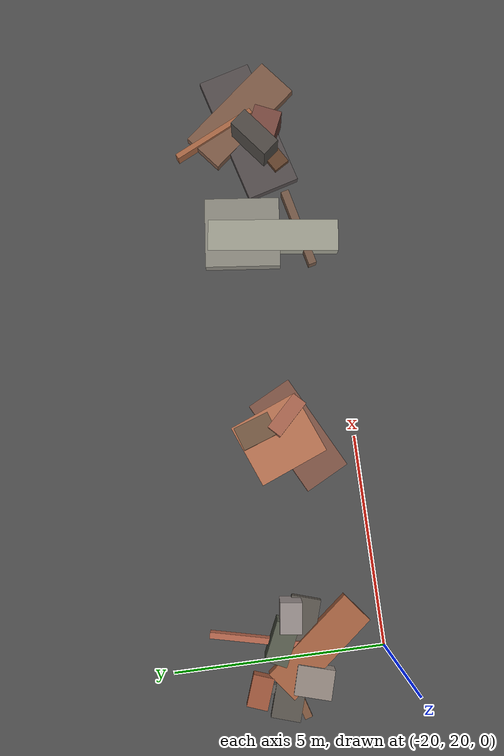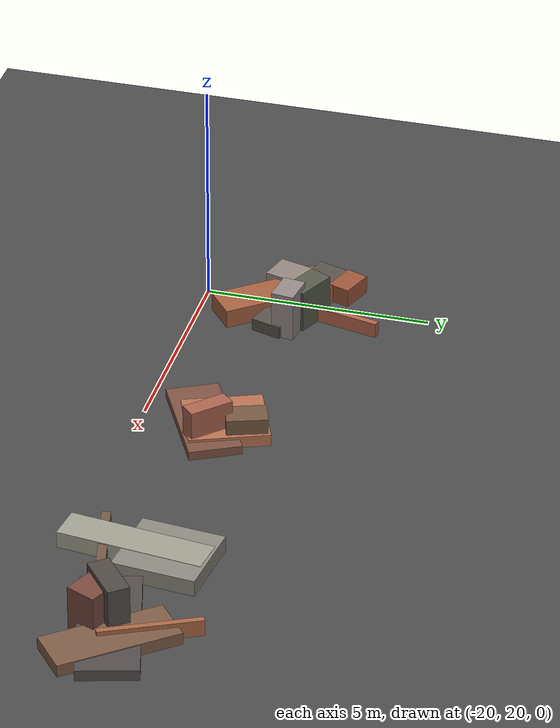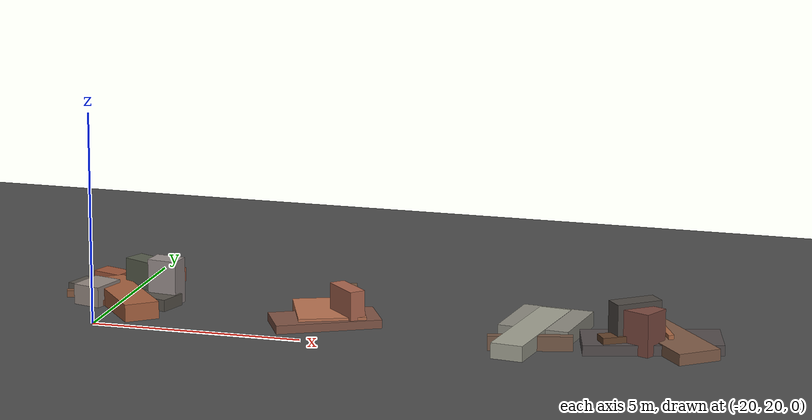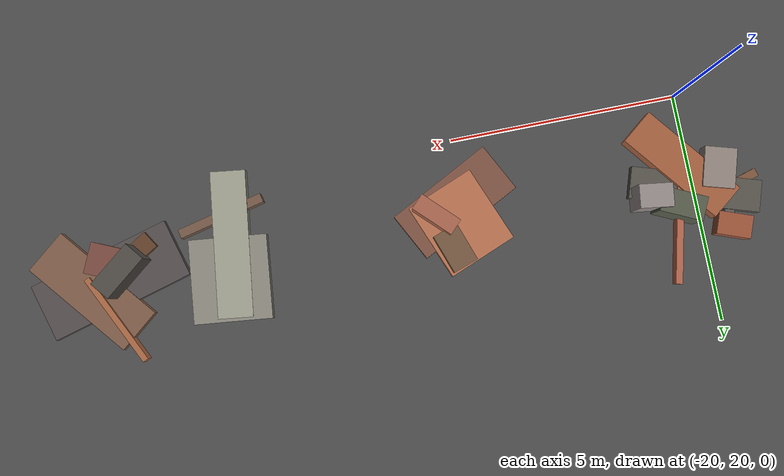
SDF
<sdf version="1.6">
 <world name="navitas_arena">
  <model name="ground_plane">
   <static>true</static>
   <link name="link">
    <collision name="collision">
     <geometry><plane><normal>0 0 1</normal><size>400 400</size></plane></geometry>
     <surface><friction><ode><mu>0.800</mu><mu2>0.800</mu2></ode></friction></surface>
    </collision>
    <visual name="visual">
     <cast_shadows>false</cast_shadows>
     <geometry><plane><normal>0 0 1</normal><size>400 400</size></plane></geometry>
     <material>
      <specular>0.04 0.04 0.04 1</specular>
      <script>
       <uri>file://media/materials/scripts/navitas_asphalt.material</uri>
       <name>Navitas/RealArenaAsphalt</name>
      </script>
     </material>
    </visual>
   </link>
  </model>
  <model name="deb_orta_3">
   <static>true</static>
   <pose>-20.504 22.289 0.000 0 0 0</pose>
   <link name="link">
    <collision name="col_0">
     <pose>-0.101 -0.059 0.080 0.000 0.000 0.292</pose>
     <geometry><box><size>1.656 0.186 0.159</size></box></geometry>
    </collision>
    <visual name="vis_0">
     <pose>-0.101 -0.059 0.080 0.000 0.000 0.292</pose>
     <geometry><box><size>1.656 0.186 0.159</size></box></geometry>
     <material>
      <ambient>0.47 0.31 0.23 1</ambient>
      <diffuse>0.50 0.34 0.24 1</diffuse>
      <specular>0.05 0.05 0.045 1</specular>
     </material>
    </visual>
    <collision name="col_1">
     <pose>0.524 -0.181 0.141 0.000 0.000 2.837</pose>
     <geometry><box><size>2.845 0.697 0.281</size></box></geometry>
    </collision>
    <visual name="vis_1">
     <pose>0.524 -0.181 0.141 0.000 0.000 2.837</pose>
     <geometry><box><size>2.845 0.697 0.281</size></box></geometry>
     <material>
      <ambient>0.32 0.30 0.28 1</ambient>
      <diffuse>0.35 0.33 0.30 1</diffuse>
      <specular>0.05 0.05 0.045 1</specular>
     </material>
    </visual>
    <collision name="col_2">
     <pose>-0.115 0.743 0.208 0.000 0.000 1.221</pose>
     <geometry><box><size>0.499 0.743 0.415</size></box></geometry>
    </collision>
    <visual name="vis_2">
     <pose>-0.115 0.743 0.208 0.000 0.000 1.221</pose>
     <geometry><box><size>0.499 0.743 0.415</size></box></geometry>
     <material>
      <ambient>0.58 0.32 0.21 1</ambient>
      <diffuse>0.62 0.34 0.23 1</diffuse>
      <specular>0.05 0.05 0.045 1</specular>
     </material>
    </visual>
    <collision name="col_3">
     <pose>-0.043 -0.532 0.244 0.000 0.000 2.861</pose>
     <geometry><box><size>0.695 0.877 0.488</size></box></geometry>
    </collision>
    <visual name="vis_3">
     <pose>-0.043 -0.532 0.244 0.000 0.000 2.861</pose>
     <geometry><box><size>0.695 0.877 0.488</size></box></geometry>
     <material>
      <ambient>0.54 0.49 0.46 1</ambient>
      <diffuse>0.58 0.53 0.50 1</diffuse>
      <specular>0.05 0.05 0.045 1</specular>
     </material>
    </visual>
    <collision name="col_4">
     <pose>0.097 -0.722 0.070 0.000 0.000 2.864</pose>
     <geometry><box><size>0.346 0.187 0.139</size></box></geometry>
    </collision>
    <visual name="vis_4">
     <pose>0.097 -0.722 0.070 0.000 0.000 2.864</pose>
     <geometry><box><size>0.346 0.187 0.139</size></box></geometry>
     <material>
      <ambient>0.66 0.41 0.30 1</ambient>
      <diffuse>0.71 0.44 0.32 1</diffuse>
      <specular>0.05 0.05 0.045 1</specular>
     </material>
    </visual>
    <collision name="col_5">
     <pose>-0.147 0.004 0.113 0.000 0.000 1.503</pose>
     <geometry><box><size>1.538 0.200 0.226</size></box></geometry>
    </collision>
    <visual name="vis_5">
     <pose>-0.147 0.004 0.113 0.000 0.000 1.503</pose>
     <geometry><box><size>1.538 0.200 0.226</size></box></geometry>
     <material>
      <ambient>0.34 0.32 0.30 1</ambient>
      <diffuse>0.37 0.35 0.33 1</diffuse>
      <specular>0.05 0.05 0.045 1</specular>
     </material>
    </visual>
    <collision name="col_6">
     <pose>0.199 0.123 0.079 0.000 0.000 1.714</pose>
     <geometry><box><size>0.361 0.443 0.158</size></box></geometry>
    </collision>
    <visual name="vis_6">
     <pose>0.199 0.123 0.079 0.000 0.000 1.714</pose>
     <geometry><box><size>0.361 0.443 0.158</size></box></geometry>
     <material>
      <ambient>0.76 0.68 0.63 1</ambient>
      <diffuse>0.82 0.73 0.68 1</diffuse>
      <specular>0.05 0.05 0.045 1</specular>
     </material>
    </visual>
   </link>
  </model>
  <model name="deb_orta_10">
   <static>true</static>
   <pose>-7.085 21.328 0.000 0 0 0</pose>
   <link name="link">
    <collision name="col_0">
     <pose>-0.437 0.138 0.561 0.000 0.000 0.673</pose>
     <geometry><box><size>1.107 0.478 1.122</size></box></geometry>
    </collision>
    <visual name="vis_0">
     <pose>-0.437 0.138 0.561 0.000 0.000 0.673</pose>
     <geometry><box><size>1.107 0.478 1.122</size></box></geometry>
     <material>
      <ambient>0.28 0.27 0.25 1</ambient>
      <diffuse>0.31 0.29 0.27 1</diffuse>
      <specular>0.05 0.05 0.045 1</specular>
     </material>
    </visual>
    <collision name="col_1">
     <pose>-0.067 0.244 0.123 0.000 0.000 0.270</pose>
     <geometry><box><size>3.196 1.292 0.246</size></box></geometry>
    </collision>
    <visual name="vis_1">
     <pose>-0.067 0.244 0.123 0.000 0.000 0.270</pose>
     <geometry><box><size>3.196 1.292 0.246</size></box></geometry>
     <material>
      <ambient>0.30 0.28 0.27 1</ambient>
      <diffuse>0.33 0.30 0.30 1</diffuse>
      <specular>0.05 0.05 0.045 1</specular>
     </material>
    </visual>
    <collision name="col_2">
     <pose>-0.063 1.102 0.184 0.000 0.000 -1.123</pose>
     <geometry><box><size>2.171 0.132 0.367</size></box></geometry>
    </collision>
    <visual name="vis_2">
     <pose>-0.063 1.102 0.184 0.000 0.000 -1.123</pose>
     <geometry><box><size>2.171 0.132 0.367</size></box></geometry>
     <material>
      <ambient>0.62 0.38 0.25 1</ambient>
      <diffuse>0.67 0.41 0.27 1</diffuse>
      <specular>0.05 0.05 0.045 1</specular>
     </material>
    </visual>
    <collision name="col_3">
     <pose>-0.670 -0.190 0.198 0.000 0.000 0.549</pose>
     <geometry><box><size>1.024 0.410 0.397</size></box></geometry>
    </collision>
    <visual name="vis_3">
     <pose>-0.670 -0.190 0.198 0.000 0.000 0.549</pose>
     <geometry><box><size>1.024 0.410 0.397</size></box></geometry>
     <material>
      <ambient>0.36 0.24 0.15 1</ambient>
      <diffuse>0.39 0.26 0.17 1</diffuse>
      <specular>0.05 0.05 0.045 1</specular>
     </material>
    </visual>
    <collision name="col_4">
     <pose>0.878 -0.450 0.114 0.000 0.000 -0.329</pose>
     <geometry><box><size>0.243 0.478 0.228</size></box></geometry>
    </collision>
    <visual name="vis_4">
     <pose>0.878 -0.450 0.114 0.000 0.000 -0.329</pose>
     <geometry><box><size>0.243 0.478 0.228</size></box></geometry>
     <material>
      <ambient>0.56 0.34 0.23 1</ambient>
      <diffuse>0.60 0.37 0.25 1</diffuse>
      <specular>0.05 0.05 0.045 1</specular>
     </material>
    </visual>
    <collision name="col_5">
     <pose>0.360 0.401 0.135 0.000 0.000 -0.888</pose>
     <geometry><box><size>2.688 1.044 0.271</size></box></geometry>
    </collision>
    <visual name="vis_5">
     <pose>0.360 0.401 0.135 0.000 0.000 -0.888</pose>
     <geometry><box><size>2.688 1.044 0.271</size></box></geometry>
     <material>
      <ambient>0.46 0.33 0.26 1</ambient>
      <diffuse>0.50 0.36 0.28 1</diffuse>
      <specular>0.05 0.05 0.045 1</specular>
     </material>
    </visual>
    <collision name="col_6">
     <pose>-0.220 -0.111 0.501 0.000 0.000 -0.422</pose>
     <geometry><box><size>0.804 0.675 1.003</size></box></geometry>
    </collision>
    <visual name="vis_6">
     <pose>-0.220 -0.111 0.501 0.000 0.000 -0.422</pose>
     <geometry><box><size>0.804 0.675 1.003</size></box></geometry>
     <material>
      <ambient>0.44 0.27 0.23 1</ambient>
      <diffuse>0.48 0.29 0.25 1</diffuse>
      <specular>0.05 0.05 0.045 1</specular>
     </material>
    </visual>
   </link>
  </model>
  <model name="deb_orta_137">
   <static>true</static>
   <pose>-14.738 21.858 0.000 0 0 0</pose>
   <link name="link">
    <collision name="col_0">
     <pose>-0.101 -0.024 0.133 0.000 0.000 3.521</pose>
     <geometry><box><size>1.574 1.750 0.265</size></box></geometry>
    </collision>
    <visual name="vis_0">
     <pose>-0.101 -0.024 0.133 0.000 0.000 3.521</pose>
     <geometry><box><size>1.574 1.750 0.265</size></box></geometry>
     <material>
      <ambient>0.67 0.41 0.29 1</ambient>
      <diffuse>0.73 0.45 0.32 1</diffuse>
      <specular>0.05 0.05 0.045 1</specular>
     </material>
    </visual>
    <collision name="col_1">
     <pose>0.146 0.499 0.307 0.000 0.000 3.479</pose>
     <geometry><box><size>0.575 0.890 0.614</size></box></geometry>
    </collision>
    <visual name="vis_1">
     <pose>0.146 0.499 0.307 0.000 0.000 3.479</pose>
     <geometry><box><size>0.575 0.890 0.614</size></box></geometry>
     <material>
      <ambient>0.42 0.32 0.24 1</ambient>
      <diffuse>0.46 0.35 0.26 1</diffuse>
      <specular>0.05 0.05 0.045 1</specular>
     </material>
    </visual>
    <collision name="col_2">
     <pose>-0.065 -0.496 0.101 0.000 0.000 3.618</pose>
     <geometry><box><size>2.482 1.147 0.202</size></box></geometry>
    </collision>
    <visual name="vis_2">
     <pose>-0.065 -0.496 0.101 0.000 0.000 3.618</pose>
     <geometry><box><size>2.482 1.147 0.202</size></box></geometry>
     <material>
      <ambient>0.46 0.30 0.25 1</ambient>
      <diffuse>0.50 0.33 0.27 1</diffuse>
      <specular>0.05 0.05 0.045 1</specular>
     </material>
    </visual>
    <collision name="col_3">
     <pose>0.415 -0.271 0.445 0.000 0.000 2.357</pose>
     <geometry><box><size>0.993 0.377 0.889</size></box></geometry>
    </collision>
    <visual name="vis_3">
     <pose>0.415 -0.271 0.445 0.000 0.000 2.357</pose>
     <geometry><box><size>0.993 0.377 0.889</size></box></geometry>
     <material>
      <ambient>0.62 0.37 0.29 1</ambient>
      <diffuse>0.67 0.40 0.31 1</diffuse>
      <specular>0.05 0.05 0.045 1</specular>
     </material>
    </visual>
   </link>
  </model>
  <model name="deb_orta_222">
   <static>true</static>
   <pose>-9.757 21.422 0.000 0 0 0</pose>
   <link name="link">
    <collision name="col_0">
     <pose>-0.002 -0.753 0.173 0.000 0.000 0.230</pose>
     <geometry><box><size>1.936 0.197 0.346</size></box></geometry>
    </collision>
    <visual name="vis_0">
     <pose>-0.002 -0.753 0.173 0.000 0.000 0.230</pose>
     <geometry><box><size>1.936 0.197 0.346</size></box></geometry>
     <material>
      <ambient>0.42 0.32 0.26 1</ambient>
      <diffuse>0.46 0.35 0.28 1</diffuse>
      <specular>0.05 0.05 0.045 1</specular>
     </material>
    </visual>
    <collision name="col_1">
     <pose>0.041 0.634 0.182 0.000 0.000 1.463</pose>
     <geometry><box><size>1.823 1.696 0.364</size></box></geometry>
    </collision>
    <visual name="vis_1">
     <pose>0.041 0.634 0.182 0.000 0.000 1.463</pose>
     <geometry><box><size>1.823 1.696 0.364</size></box></geometry>
     <material>
      <ambient>0.51 0.50 0.47 1</ambient>
      <diffuse>0.55 0.54 0.50 1</diffuse>
      <specular>0.05 0.05 0.045 1</specular>
     </material>
    </visual>
    <collision name="col_2">
     <pose>-0.038 0.525 0.105 0.000 0.000 0.306</pose>
     <geometry><box><size>0.401 0.167 0.211</size></box></geometry>
    </collision>
    <visual name="vis_2">
     <pose>-0.038 0.525 0.105 0.000 0.000 0.306</pose>
     <geometry><box><size>0.401 0.167 0.211</size></box></geometry>
     <material>
      <ambient>0.44 0.30 0.21 1</ambient>
      <diffuse>0.48 0.33 0.23 1</diffuse>
      <specular>0.05 0.05 0.045 1</specular>
     </material>
    </visual>
    <collision name="col_3">
     <pose>-0.123 -0.104 0.185 0.000 0.000 1.443</pose>
     <geometry><box><size>3.185 0.764 0.370</size></box></geometry>
    </collision>
    <visual name="vis_3">
     <pose>-0.123 -0.104 0.185 0.000 0.000 1.443</pose>
     <geometry><box><size>3.185 0.764 0.370</size></box></geometry>
     <material>
      <ambient>0.58 0.58 0.52 1</ambient>
      <diffuse>0.63 0.63 0.57 1</diffuse>
      <specular>0.05 0.05 0.045 1</specular>
     </material>
    </visual>
   </link>
  </model>
  <model name="deb_orta_286">
   <static>true</static>
   <pose>-19.076 22.160 0.000 0 0 0</pose>
   <link name="link">
    <collision name="col_0">
     <pose>0.145 -0.045 0.542 0.000 0.000 1.436</pose>
     <geometry><box><size>0.508 0.715 1.083</size></box></geometry>
    </collision>
    <visual name="vis_0">
     <pose>0.145 -0.045 0.542 0.000 0.000 1.436</pose>
     <geometry><box><size>0.508 0.715 1.083</size></box></geometry>
     <material>
      <ambient>0.54 0.51 0.50 1</ambient>
      <diffuse>0.59 0.55 0.54 1</diffuse>
      <specular>0.05 0.05 0.045 1</specular>
     </material>
    </visual>
    <collision name="col_1">
     <pose>-0.421 0.235 0.478 0.000 0.000 2.702</pose>
     <geometry><box><size>0.933 0.528 0.956</size></box></geometry>
    </collision>
    <visual name="vis_1">
     <pose>-0.421 0.235 0.478 0.000 0.000 2.702</pose>
     <geometry><box><size>0.933 0.528 0.956</size></box></geometry>
     <material>
      <ambient>0.32 0.34 0.28 1</ambient>
      <diffuse>0.34 0.36 0.30 1</diffuse>
      <specular>0.05 0.05 0.045 1</specular>
     </material>
    </visual>
    <collision name="col_2">
     <pose>-0.701 -0.630 0.207 0.000 0.000 2.242</pose>
     <geometry><box><size>2.542 0.829 0.414</size></box></geometry>
    </collision>
    <visual name="vis_2">
     <pose>-0.701 -0.630 0.207 0.000 0.000 2.242</pose>
     <geometry><box><size>2.542 0.829 0.414</size></box></geometry>
     <material>
      <ambient>0.60 0.36 0.23 1</ambient>
      <diffuse>0.65 0.38 0.25 1</diffuse>
      <specular>0.05 0.05 0.045 1</specular>
     </material>
    </visual>
    <collision name="col_3">
     <pose>-0.355 0.841 0.169 0.000 0.000 1.340</pose>
     <geometry><box><size>2.152 0.143 0.338</size></box></geometry>
    </collision>
    <visual name="vis_3">
     <pose>-0.355 0.841 0.169 0.000 0.000 1.340</pose>
     <geometry><box><size>2.152 0.143 0.338</size></box></geometry>
     <material>
      <ambient>0.66 0.37 0.28 1</ambient>
      <diffuse>0.71 0.40 0.30 1</diffuse>
      <specular>0.05 0.05 0.045 1</specular>
     </material>
    </visual>
   </link>
  </model>
 </world>
</sdf>
